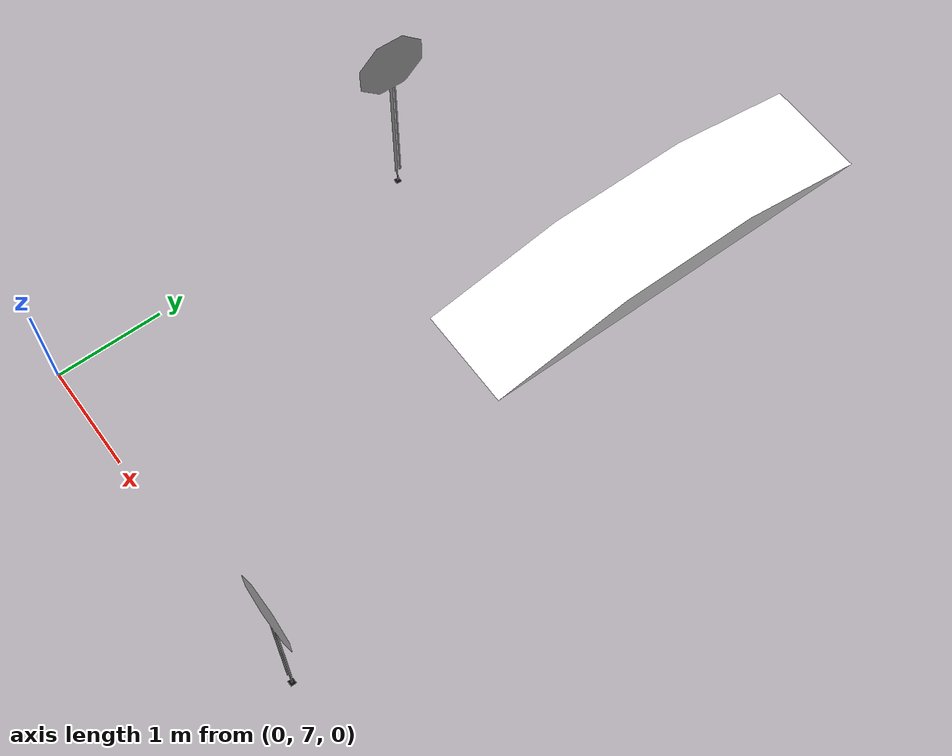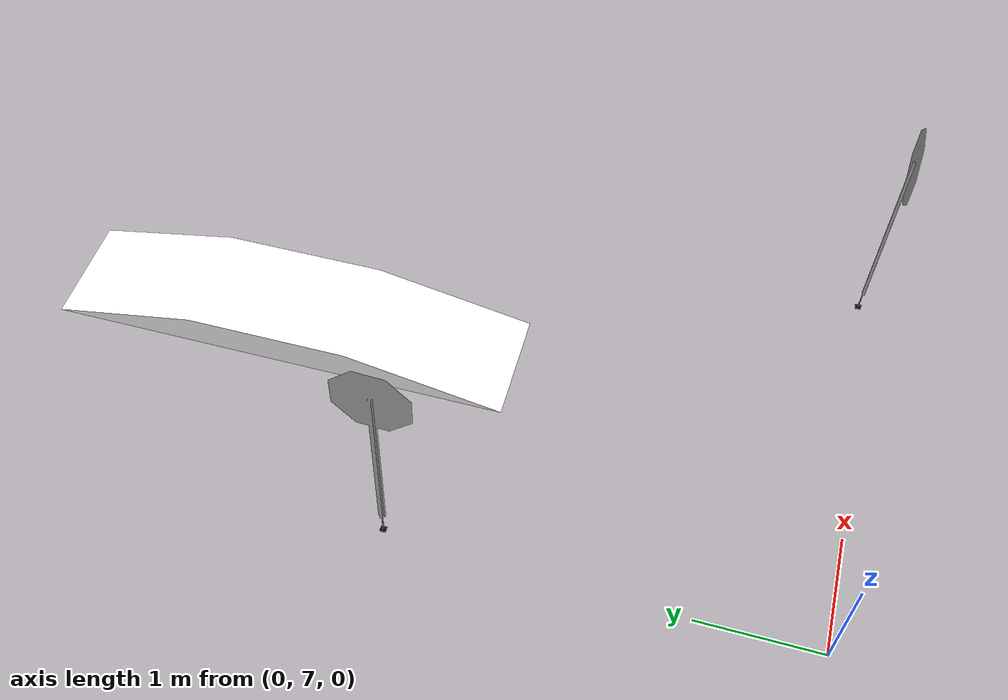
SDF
<sdf version="1.7">
 <world name="bfmc_official">
  <model name="ramp">
   <link name="link_0">
    <inertial>
     <mass>1</mass>
     <inertia>
      <ixx>0.166667</ixx>
      <ixy>0</ixy>
      <ixz>0</ixz>
      <iyy>0.166667</iyy>
      <iyz>0</iyz>
      <izz>0.166667</izz>
     </inertia>
    </inertial>
    <visual name="visual">
     <geometry><mesh><uri>model://ramp/meshes/ramp.dae</uri><scale>1 1 1</scale></mesh></geometry>
     <material>
      <lighting>1</lighting>
      <ambient>1 1 1 1</ambient>
      <diffuse>1 1 1 1</diffuse>
      <specular>0 0 0 0</specular>
      <emissive>1 1 1 1</emissive>
      <script>
       <uri>model://ramp/materials/scripts</uri>
       <uri>model://ramp/materials/textures</uri>
       <name>RAMP</name>
      </script>
      <shader type="vertex"><normal_map>__default__</normal_map></shader>
      <ambient>0.3 0.3 0.3 1</ambient>
      <diffuse>0.7 0.7 0.7 1</diffuse>
      <specular>0.01 0.01 0.01 1</specular>
      <emissive>0 0 0 1</emissive>
     </material>
    </visual>
    <collision name="collision">
     <geometry><mesh><uri>model://ramp/meshes/ramp.dae</uri><scale>1 1 1</scale></mesh></geometry>
     <surface>
      <friction>
       <ode><mu>1</mu><mu2>1</mu2><fdir1>0 0 0</fdir1><slip1>0</slip1><slip2>0</slip2></ode>
       <torsional>
        <coefficient>1</coefficient>
        <patch_radius>0</patch_radius>
        <surface_radius>0</surface_radius>
        <use_patch_radius>1</use_patch_radius>
        <ode><slip>0</slip></ode>
       </torsional>
      </friction>
      <bounce><restitution_coefficient>0</restitution_coefficient><threshold>1e+06</threshold></bounce>
      <contact>
       <collide_without_contact>0</collide_without_contact>
       <collide_without_contact_bitmask>1</collide_without_contact_bitmask>
       <collide_bitmask>1</collide_bitmask>
       <ode>
        <soft_cfm>0</soft_cfm>
        <soft_erp>0.2</soft_erp>
        <kp>1e+13</kp>
        <kd>1</kd>
        <max_vel>0.01</max_vel>
        <min_depth>0</min_depth>
       </ode>
       <bullet>
        <split_impulse>1</split_impulse>
        <split_impulse_penetration_threshold>-0.01</split_impulse_penetration_threshold>
        <soft_cfm>0</soft_cfm>
        <soft_erp>0.2</soft_erp>
        <kp>1e+13</kp>
        <kd>1</kd>
       </bullet>
      </contact>
     </surface>
    </collision>
   </link>
   <static>1</static>
   <pose>3.40939 11.8506 0 0 -0 0</pose>
  </model>
  <model name="stop_sign_0">
   <static>1</static>
   <link name="sign_leg">
    <inertial>
     <mass>0.5</mass>
     <inertia>
      <ixx>0.166667</ixx>
      <ixy>0</ixy>
      <ixz>0</ixz>
      <iyy>0.166667</iyy>
      <iyz>0</iyz>
      <izz>0.166667</izz>
     </inertia>
     <pose>0 0 -0.078998 0 -0 0</pose>
    </inertial>
    <pose>0.002193 -0.000682 -0.07606 0 -0 0</pose>
    <self_collide>1</self_collide>
    <enable_wind>1</enable_wind>
    <visual name="visual">
     <geometry><mesh><uri>model://subassembly/meshes/sign_leg.dae</uri><scale>1 1 1</scale></mesh></geometry>
    </visual>
    <collision name="collision">
     <geometry><mesh><uri>model://subassembly/meshes/sign_leg.dae</uri><scale>1 1 1</scale></mesh></geometry>
     <surface>
      <friction>
       <ode><mu>0.46</mu><mu2>1</mu2><fdir1>0 0 0</fdir1><slip1>0</slip1><slip2>0</slip2></ode>
       <torsional>
        <coefficient>1</coefficient>
        <patch_radius>0</patch_radius>
        <surface_radius>0</surface_radius>
        <use_patch_radius>1</use_patch_radius>
        <ode><slip>0</slip></ode>
       </torsional>
      </friction>
      <bounce><restitution_coefficient>0</restitution_coefficient><threshold>1e+06</threshold></bounce>
      <contact>
       <collide_without_contact>0</collide_without_contact>
       <collide_without_contact_bitmask>1</collide_without_contact_bitmask>
       <collide_bitmask>1</collide_bitmask>
       <ode>
        <soft_cfm>0</soft_cfm>
        <soft_erp>0.2</soft_erp>
        <kp>1e+13</kp>
        <kd>1</kd>
        <max_vel>0.01</max_vel>
        <min_depth>0</min_depth>
       </ode>
       <bullet>
        <split_impulse>1</split_impulse>
        <split_impulse_penetration_threshold>-0.01</split_impulse_penetration_threshold>
        <soft_cfm>0</soft_cfm>
        <soft_erp>0.2</soft_erp>
        <kp>1e+13</kp>
        <kd>1</kd>
       </bullet>
      </contact>
     </surface>
    </collision>
   </link>
   <link name="octagonal_support">
    <inertial>
     <mass>0.022</mass>
     <inertia>
      <ixx>0.166667</ixx>
      <ixy>0</ixy>
      <ixz>0</ixz>
      <iyy>0.166667</iyy>
      <iyz>0</iyz>
      <izz>0.166667</izz>
     </inertia>
    </inertial>
    <pose>-0.002193 0.000682 0.09894 0 -0 3.14159</pose>
    <self_collide>1</self_collide>
    <enable_wind>1</enable_wind>
    <visual name="visual">
     <geometry><mesh><uri>model://stop_sign/meshes/stop_sign.dae</uri><scale>1 1 1</scale></mesh></geometry>
     <material>
      <lighting>1</lighting>
      <script>
       <uri>model://stop_sign/materials/scripts</uri>
       <uri>model://stop_sign/materials/textures</uri>
       <name>STOP_SIGN</name>
      </script>
      <shader type="vertex"><normal_map>__default__</normal_map></shader>
      <ambient>0.3 0.3 0.3 1</ambient>
      <diffuse>0.7 0.7 0.7 1</diffuse>
      <specular>0.01 0.01 0.01 1</specular>
      <emissive>0 0 0 1</emissive>
     </material>
    </visual>
    <collision name="collision">
     <geometry><mesh><uri>model://stop_sign/meshes/stop_sign.dae</uri><scale>1 1 1</scale></mesh></geometry>
     <surface>
      <friction>
       <ode><mu>0.46</mu><mu2>1</mu2><fdir1>0 0 0</fdir1><slip1>0</slip1><slip2>0</slip2></ode>
       <torsional>
        <coefficient>1</coefficient>
        <patch_radius>0</patch_radius>
        <surface_radius>0</surface_radius>
        <use_patch_radius>1</use_patch_radius>
        <ode><slip>0</slip></ode>
       </torsional>
      </friction>
      <bounce><restitution_coefficient>0</restitution_coefficient><threshold>1e+06</threshold></bounce>
      <contact>
       <collide_without_contact>0</collide_without_contact>
       <collide_without_contact_bitmask>1</collide_without_contact_bitmask>
       <collide_bitmask>1</collide_bitmask>
       <ode>
        <soft_cfm>0</soft_cfm>
        <soft_erp>0.2</soft_erp>
        <kp>1e+13</kp>
        <kd>1</kd>
        <max_vel>0.01</max_vel>
        <min_depth>0</min_depth>
       </ode>
       <bullet>
        <split_impulse>1</split_impulse>
        <split_impulse_penetration_threshold>-0.01</split_impulse_penetration_threshold>
        <soft_cfm>0</soft_cfm>
        <soft_erp>0.2</soft_erp>
        <kp>1e+13</kp>
        <kd>1</kd>
       </bullet>
      </contact>
     </surface>
    </collision>
   </link>
   <joint name="support_to_leg_joint" type="fixed">
    <parent>link_0</parent>
    <child>link_1</child>
    <physics>
     <ode><limit><cfm>0</cfm><erp>0.2</erp></limit><suspension><cfm>0</cfm><erp>0.2</erp></suspension></ode>
    </physics>
   </joint>
   <static>1</static>
   <pose>0.106598 10.4435 0.080563 0 0 -1.60745</pose>
  </model>
  <model name="stop_sign_1">
   <static>1</static>
   <link name="sign_leg">
    <inertial>
     <mass>0.5</mass>
     <inertia>
      <ixx>0.166667</ixx>
      <ixy>0</ixy>
      <ixz>0</ixz>
      <iyy>0.166667</iyy>
      <iyz>0</iyz>
      <izz>0.166667</izz>
     </inertia>
     <pose>0 0 -0.078998 0 -0 0</pose>
    </inertial>
    <pose>0.002193 -0.000682 -0.07606 0 -0 0</pose>
    <self_collide>1</self_collide>
    <enable_wind>1</enable_wind>
    <visual name="visual">
     <geometry><mesh><uri>model://subassembly/meshes/sign_leg.dae</uri><scale>1 1 1</scale></mesh></geometry>
    </visual>
    <collision name="collision">
     <geometry><mesh><uri>model://subassembly/meshes/sign_leg.dae</uri><scale>1 1 1</scale></mesh></geometry>
     <surface>
      <friction>
       <ode><mu>0.46</mu><mu2>1</mu2><fdir1>0 0 0</fdir1><slip1>0</slip1><slip2>0</slip2></ode>
       <torsional>
        <coefficient>1</coefficient>
        <patch_radius>0</patch_radius>
        <surface_radius>0</surface_radius>
        <use_patch_radius>1</use_patch_radius>
        <ode><slip>0</slip></ode>
       </torsional>
      </friction>
      <bounce><restitution_coefficient>0</restitution_coefficient><threshold>1e+06</threshold></bounce>
      <contact>
       <collide_without_contact>0</collide_without_contact>
       <collide_without_contact_bitmask>1</collide_without_contact_bitmask>
       <collide_bitmask>1</collide_bitmask>
       <ode>
        <soft_cfm>0</soft_cfm>
        <soft_erp>0.2</soft_erp>
        <kp>1e+13</kp>
        <kd>1</kd>
        <max_vel>0.01</max_vel>
        <min_depth>0</min_depth>
       </ode>
       <bullet>
        <split_impulse>1</split_impulse>
        <split_impulse_penetration_threshold>-0.01</split_impulse_penetration_threshold>
        <soft_cfm>0</soft_cfm>
        <soft_erp>0.2</soft_erp>
        <kp>1e+13</kp>
        <kd>1</kd>
       </bullet>
      </contact>
     </surface>
    </collision>
   </link>
   <link name="octagonal_support">
    <inertial>
     <mass>0.022</mass>
     <inertia>
      <ixx>0.166667</ixx>
      <ixy>0</ixy>
      <ixz>0</ixz>
      <iyy>0.166667</iyy>
      <iyz>0</iyz>
      <izz>0.166667</izz>
     </inertia>
    </inertial>
    <pose>-0.002193 0.000682 0.09894 0 -0 3.14159</pose>
    <self_collide>1</self_collide>
    <enable_wind>1</enable_wind>
    <visual name="visual">
     <geometry><mesh><uri>model://stop_sign/meshes/stop_sign.dae</uri><scale>1 1 1</scale></mesh></geometry>
     <material>
      <lighting>1</lighting>
      <script>
       <uri>model://stop_sign/materials/scripts</uri>
       <uri>model://stop_sign/materials/textures</uri>
       <name>STOP_SIGN</name>
      </script>
      <shader type="vertex"><normal_map>__default__</normal_map></shader>
      <ambient>0.3 0.3 0.3 1</ambient>
      <diffuse>0.7 0.7 0.7 1</diffuse>
      <specular>0.01 0.01 0.01 1</specular>
      <emissive>0 0 0 1</emissive>
     </material>
    </visual>
    <collision name="collision">
     <geometry><mesh><uri>model://stop_sign/meshes/stop_sign.dae</uri><scale>1 1 1</scale></mesh></geometry>
     <surface>
      <friction>
       <ode><mu>0.46</mu><mu2>1</mu2><fdir1>0 0 0</fdir1><slip1>0</slip1><slip2>0</slip2></ode>
       <torsional>
        <coefficient>1</coefficient>
        <patch_radius>0</patch_radius>
        <surface_radius>0</surface_radius>
        <use_patch_radius>1</use_patch_radius>
        <ode><slip>0</slip></ode>
       </torsional>
      </friction>
      <bounce><restitution_coefficient>0</restitution_coefficient><threshold>1e+06</threshold></bounce>
      <contact>
       <collide_without_contact>0</collide_without_contact>
       <collide_without_contact_bitmask>1</collide_without_contact_bitmask>
       <collide_bitmask>1</collide_bitmask>
       <ode>
        <soft_cfm>0</soft_cfm>
        <soft_erp>0.2</soft_erp>
        <kp>1e+13</kp>
        <kd>1</kd>
        <max_vel>0.01</max_vel>
        <min_depth>0</min_depth>
       </ode>
       <bullet>
        <split_impulse>1</split_impulse>
        <split_impulse_penetration_threshold>-0.01</split_impulse_penetration_threshold>
        <soft_cfm>0</soft_cfm>
        <soft_erp>0.2</soft_erp>
        <kp>1e+13</kp>
        <kd>1</kd>
       </bullet>
      </contact>
     </surface>
    </collision>
   </link>
   <joint name="support_to_leg_joint" type="fixed">
    <parent>link_0</parent>
    <child>link_1</child>
    <physics>
     <ode><limit><cfm>0</cfm><erp>0.2</erp></limit><suspension><cfm>0</cfm><erp>0.2</erp></suspension></ode>
    </physics>
   </joint>
   <static>1</static>
   <pose>3.38193 7.12205 0.075938 0 0 -3.14123</pose>
  </model>
 </world>
</sdf>
